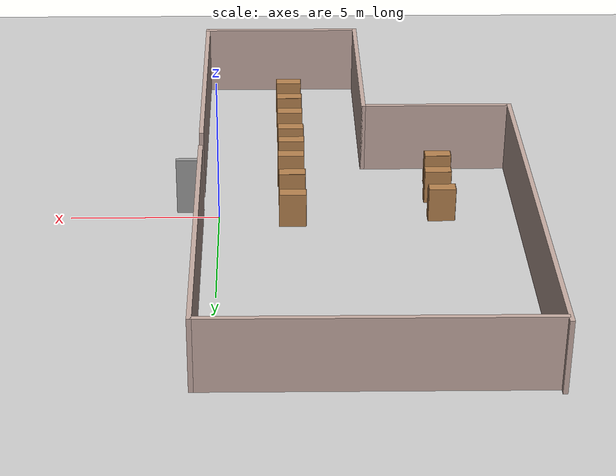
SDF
<sdf version="1.7">
 <world name="default">
  <model name="ground_plane">
   <static>1</static>
   <link name="link">
    <collision name="collision">
     <geometry><plane><normal>0 0 1</normal><size>100 100</size></plane></geometry>
     <surface><friction><ode><mu>100</mu><mu2>50</mu2></ode></friction></surface>
    </collision>
    <visual name="visual">
     <cast_shadows>0</cast_shadows>
     <geometry><plane><normal>0 0 1</normal><size>100 100</size></plane></geometry>
     <material>
      <script><uri>file://media/materials/scripts/gazebo.material</uri><name>Gazebo/Grey</name></script>
     </material>
    </visual>
   </link>
  </model>
  <model name="Library">
   <pose>-4.7482 0.020736 0 0 -0 0</pose>
   <link name="Door_0">
    <collision name="Door_0_Collision">
     <geometry><box><size>0.9 0.17 2</size></box></geometry>
     <pose>0 0 1 0 -0 0</pose>
    </collision>
    <visual name="Door_0_Visual">
     <pose>0 0 1 0 -0 0</pose>
     <geometry><box><size>0.9 0.17 2</size></box></geometry>
     <material>
      <script><uri>file://media/materials/scripts/gazebo.material</uri><name>Gazebo/Grey</name></script>
     </material>
    </visual>
    <pose>5.73366 -0.456007 0 0 -0 0</pose>
   </link>
   <link name="Wall_10">
    <collision name="Wall_10_Collision">
     <geometry><box><size>8.75 0.15 2.5</size></box></geometry>
     <pose>0 0 1.25 0 -0 0</pose>
    </collision>
    <visual name="Wall_10_Visual">
     <pose>0 0 1.25 0 -0 0</pose>
     <geometry><box><size>8.75 0.15 2.5</size></box></geometry>
     <material>
      <script><uri>file://media/materials/scripts/gazebo.material</uri><name>Gazebo/Grey</name></script>
      <ambient>0.760784 0.662745 0.627451 1</ambient>
     </material>
     <meta><layer>0</layer></meta>
    </visual>
    <pose>5.35 -5.8 0 0 -0 1.5708</pose>
   </link>
   <link name="Wall_12">
    <collision name="Wall_12_Collision">
     <geometry><box><size>10.5 0.15 2.5</size></box></geometry>
     <pose>0 0 1.25 0 -0 0</pose>
    </collision>
    <visual name="Wall_12_Visual">
     <pose>0 0 1.25 0 -0 0</pose>
     <geometry><box><size>10.5 0.15 2.5</size></box></geometry>
     <material>
      <script><uri>file://media/materials/scripts/gazebo.material</uri><name>Gazebo/Grey</name></script>
      <ambient>0.760784 0.662745 0.627451 1</ambient>
     </material>
     <meta><layer>0</layer></meta>
    </visual>
    <pose>5.3467 4.71899 0 0 -0 1.5708</pose>
   </link>
   <link name="Wall_13">
    <collision name="Wall_13_Collision">
     <geometry><box><size>10.75 0.15 2.5</size></box></geometry>
     <pose>0 0 1.25 0 -0 0</pose>
    </collision>
    <visual name="Wall_13_Visual">
     <pose>0 0 1.25 0 -0 0</pose>
     <geometry><box><size>10.75 0.15 2.5</size></box></geometry>
     <material>
      <script><uri>file://media/materials/scripts/gazebo.material</uri><name>Gazebo/Grey</name></script>
      <ambient>0.760784 0.662745 0.627451 1</ambient>
     </material>
     <meta><layer>0</layer></meta>
    </visual>
    <pose>0.046696 9.89399 0 0 -0 3.14159</pose>
   </link>
   <link name="Wall_6">
    <collision name="Wall_6_Collision">
     <geometry><box><size>13.75 0.15 2.5</size></box></geometry>
     <pose>0 0 1.25 0 -0 0</pose>
    </collision>
    <visual name="Wall_6_Visual">
     <pose>0 0 1.25 0 -0 0</pose>
     <geometry><box><size>13.75 0.15 2.5</size></box></geometry>
     <material>
      <script><uri>file://media/materials/scripts/gazebo.material</uri><name>Gazebo/Grey</name></script>
      <ambient>0.760784 0.662745 0.627451 1</ambient>
     </material>
     <meta><layer>0</layer></meta>
    </visual>
    <pose>-5.35 3.3 0 0 -0 -1.5708</pose>
   </link>
   <link name="Wall_7">
    <collision name="Wall_7_Collision">
     <geometry><box><size>5.25 0.15 2.5</size></box></geometry>
     <pose>0 0 1.25 0 -0 0</pose>
    </collision>
    <visual name="Wall_7_Visual">
     <pose>0 0 1.25 0 -0 0</pose>
     <geometry><box><size>5.25 0.15 2.5</size></box></geometry>
     <material>
      <script><uri>file://media/materials/scripts/gazebo.material</uri><name>Gazebo/Grey</name></script>
      <ambient>0.760784 0.662745 0.627451 1</ambient>
     </material>
     <meta><layer>0</layer></meta>
    </visual>
    <pose>-2.8 -3.5 0 0 -0 0</pose>
   </link>
   <link name="Wall_8">
    <collision name="Wall_8_Collision">
     <geometry><box><size>6.75 0.15 2.5</size></box></geometry>
     <pose>0 0 1.25 0 -0 0</pose>
    </collision>
    <visual name="Wall_8_Visual">
     <pose>0 0 1.25 0 -0 0</pose>
     <geometry><box><size>6.75 0.15 2.5</size></box></geometry>
     <material>
      <script><uri>file://media/materials/scripts/gazebo.material</uri><name>Gazebo/Grey</name></script>
      <ambient>0.760784 0.662745 0.627451 1</ambient>
     </material>
     <meta><layer>0</layer></meta>
    </visual>
    <pose>-0.25 -6.8 0 0 -0 -1.5708</pose>
   </link>
   <link name="Wall_9">
    <collision name="Wall_9_Collision">
     <geometry><box><size>5.75 0.15 2.5</size></box></geometry>
     <pose>0 0 1.25 0 -0 0</pose>
    </collision>
    <visual name="Wall_9_Visual">
     <pose>0 0 1.25 0 -0 0</pose>
     <geometry><box><size>5.75 0.15 2.5</size></box></geometry>
     <material>
      <script><uri>file://media/materials/scripts/gazebo.material</uri><name>Gazebo/Grey</name></script>
      <ambient>0.760784 0.662745 0.627451 1</ambient>
     </material>
     <meta><layer>0</layer></meta>
    </visual>
    <pose>2.55 -10.1 0 0 -0 0</pose>
   </link>
   <static>1</static>
  </model>
  <model name="bookshelf">
   <static>1</static>
   <link name="link">
    <inertial><mass>1</mass></inertial>
    <collision name="back">
     <pose>0 0.005 0.6 0 -0 0</pose>
     <geometry><box><size>0.9 0.01 1.2</size></box></geometry>
    </collision>
    <visual name="visual1">
     <pose>0 0.005 0.6 0 -0 0</pose>
     <geometry><box><size>0.9 0.01 1.2</size></box></geometry>
     <material>
      <script><uri>file://media/materials/scripts/gazebo.material</uri><name>Gazebo/Wood</name></script>
     </material>
    </visual>
    <collision name="left_side">
     <pose>0.45 -0.195 0.6 0 -0 0</pose>
     <geometry><box><size>0.02 0.4 1.2</size></box></geometry>
    </collision>
    <visual name="visual2">
     <pose>0.45 -0.195 0.6 0 -0 0</pose>
     <geometry><box><size>0.02 0.4 1.2</size></box></geometry>
     <material>
      <script><uri>file://media/materials/scripts/gazebo.material</uri><name>Gazebo/Wood</name></script>
     </material>
    </visual>
    <collision name="right_side">
     <pose>-0.45 -0.195 0.6 0 -0 0</pose>
     <geometry><box><size>0.02 0.4 1.2</size></box></geometry>
    </collision>
    <visual name="visual3">
     <pose>-0.45 -0.195 0.6 0 -0 0</pose>
     <geometry><box><size>0.02 0.4 1.2</size></box></geometry>
     <material>
      <script><uri>file://media/materials/scripts/gazebo.material</uri><name>Gazebo/Wood</name></script>
     </material>
    </visual>
    <collision name="bottom">
     <pose>0 -0.195 0.03 0 -0 0</pose>
     <geometry><box><size>0.88 0.4 0.06</size></box></geometry>
    </collision>
    <visual name="visual4">
     <pose>0 -0.195 0.03 0 -0 0</pose>
     <geometry><box><size>0.88 0.4 0.06</size></box></geometry>
     <material>
      <script><uri>file://media/materials/scripts/gazebo.material</uri><name>Gazebo/Wood</name></script>
     </material>
    </visual>
    <collision name="top">
     <pose>0 -0.195 1.19 0 -0 0</pose>
     <geometry><box><size>0.88 0.4 0.02</size></box></geometry>
    </collision>
    <visual name="visual5">
     <pose>0 -0.195 1.19 0 -0 0</pose>
     <geometry><box><size>0.88 0.4 0.02</size></box></geometry>
     <material>
      <script><uri>file://media/materials/scripts/gazebo.material</uri><name>Gazebo/Wood</name></script>
     </material>
    </visual>
    <collision name="low_shelf">
     <pose>0 -0.195 0.43 0 -0 0</pose>
     <geometry><box><size>0.88 0.4 0.02</size></box></geometry>
    </collision>
    <visual name="visual6">
     <pose>0 -0.195 0.43 0 -0 0</pose>
     <geometry><box><size>0.88 0.4 0.02</size></box></geometry>
     <material>
      <script><uri>file://media/materials/scripts/gazebo.material</uri><name>Gazebo/Wood</name></script>
     </material>
    </visual>
    <collision name="high_shelf">
     <pose>0 -0.195 0.8 0 -0 0</pose>
     <geometry><box><size>0.88 0.4 0.02</size></box></geometry>
    </collision>
    <visual name="visual7">
     <pose>0 -0.195 0.8 0 -0 0</pose>
     <geometry><box><size>0.88 0.4 0.02</size></box></geometry>
     <material>
      <script><uri>file://media/materials/scripts/gazebo.material</uri><name>Gazebo/Wood</name></script>
     </material>
    </visual>
   </link>
   <pose>-7.44995 -0.945511 0 0 -0 0</pose>
  </model>
  <model name="bookshelf_6">
   <static>1</static>
   <link name="link">
    <inertial><mass>1</mass></inertial>
    <collision name="back">
     <pose>0 0.005 0.6 0 -0 0</pose>
     <geometry><box><size>0.9 0.01 1.2</size></box></geometry>
    </collision>
    <visual name="visual1">
     <pose>0 0.005 0.6 0 -0 0</pose>
     <geometry><box><size>0.9 0.01 1.2</size></box></geometry>
     <material>
      <script><uri>file://media/materials/scripts/gazebo.material</uri><name>Gazebo/Wood</name></script>
     </material>
    </visual>
    <collision name="left_side">
     <pose>0.45 -0.195 0.6 0 -0 0</pose>
     <geometry><box><size>0.02 0.4 1.2</size></box></geometry>
    </collision>
    <visual name="visual2">
     <pose>0.45 -0.195 0.6 0 -0 0</pose>
     <geometry><box><size>0.02 0.4 1.2</size></box></geometry>
     <material>
      <script><uri>file://media/materials/scripts/gazebo.material</uri><name>Gazebo/Wood</name></script>
     </material>
    </visual>
    <collision name="right_side">
     <pose>-0.45 -0.195 0.6 0 -0 0</pose>
     <geometry><box><size>0.02 0.4 1.2</size></box></geometry>
    </collision>
    <visual name="visual3">
     <pose>-0.45 -0.195 0.6 0 -0 0</pose>
     <geometry><box><size>0.02 0.4 1.2</size></box></geometry>
     <material>
      <script><uri>file://media/materials/scripts/gazebo.material</uri><name>Gazebo/Wood</name></script>
     </material>
    </visual>
    <collision name="bottom">
     <pose>0 -0.195 0.03 0 -0 0</pose>
     <geometry><box><size>0.88 0.4 0.06</size></box></geometry>
    </collision>
    <visual name="visual4">
     <pose>0 -0.195 0.03 0 -0 0</pose>
     <geometry><box><size>0.88 0.4 0.06</size></box></geometry>
     <material>
      <script><uri>file://media/materials/scripts/gazebo.material</uri><name>Gazebo/Wood</name></script>
     </material>
    </visual>
    <collision name="top">
     <pose>0 -0.195 1.19 0 -0 0</pose>
     <geometry><box><size>0.88 0.4 0.02</size></box></geometry>
    </collision>
    <visual name="visual5">
     <pose>0 -0.195 1.19 0 -0 0</pose>
     <geometry><box><size>0.88 0.4 0.02</size></box></geometry>
     <material>
      <script><uri>file://media/materials/scripts/gazebo.material</uri><name>Gazebo/Wood</name></script>
     </material>
    </visual>
    <collision name="low_shelf">
     <pose>0 -0.195 0.43 0 -0 0</pose>
     <geometry><box><size>0.88 0.4 0.02</size></box></geometry>
    </collision>
    <visual name="visual6">
     <pose>0 -0.195 0.43 0 -0 0</pose>
     <geometry><box><size>0.88 0.4 0.02</size></box></geometry>
     <material>
      <script><uri>file://media/materials/scripts/gazebo.material</uri><name>Gazebo/Wood</name></script>
     </material>
    </visual>
    <collision name="high_shelf">
     <pose>0 -0.195 0.8 0 -0 0</pose>
     <geometry><box><size>0.88 0.4 0.02</size></box></geometry>
    </collision>
    <visual name="visual7">
     <pose>0 -0.195 0.8 0 -0 0</pose>
     <geometry><box><size>0.88 0.4 0.02</size></box></geometry>
     <material>
      <script><uri>file://media/materials/scripts/gazebo.material</uri><name>Gazebo/Wood</name></script>
     </material>
    </visual>
   </link>
   <pose>-7.48414 0.295837 0 0 -0 0</pose>
  </model>
  <model name="bookshelf_7">
   <static>1</static>
   <link name="link">
    <inertial><mass>1</mass></inertial>
    <collision name="back">
     <pose>0 0.005 0.6 0 -0 0</pose>
     <geometry><box><size>0.9 0.01 1.2</size></box></geometry>
    </collision>
    <visual name="visual1">
     <pose>0 0.005 0.6 0 -0 0</pose>
     <geometry><box><size>0.9 0.01 1.2</size></box></geometry>
     <material>
      <script><uri>file://media/materials/scripts/gazebo.material</uri><name>Gazebo/Wood</name></script>
     </material>
    </visual>
    <collision name="left_side">
     <pose>0.45 -0.195 0.6 0 -0 0</pose>
     <geometry><box><size>0.02 0.4 1.2</size></box></geometry>
    </collision>
    <visual name="visual2">
     <pose>0.45 -0.195 0.6 0 -0 0</pose>
     <geometry><box><size>0.02 0.4 1.2</size></box></geometry>
     <material>
      <script><uri>file://media/materials/scripts/gazebo.material</uri><name>Gazebo/Wood</name></script>
     </material>
    </visual>
    <collision name="right_side">
     <pose>-0.45 -0.195 0.6 0 -0 0</pose>
     <geometry><box><size>0.02 0.4 1.2</size></box></geometry>
    </collision>
    <visual name="visual3">
     <pose>-0.45 -0.195 0.6 0 -0 0</pose>
     <geometry><box><size>0.02 0.4 1.2</size></box></geometry>
     <material>
      <script><uri>file://media/materials/scripts/gazebo.material</uri><name>Gazebo/Wood</name></script>
     </material>
    </visual>
    <collision name="bottom">
     <pose>0 -0.195 0.03 0 -0 0</pose>
     <geometry><box><size>0.88 0.4 0.06</size></box></geometry>
    </collision>
    <visual name="visual4">
     <pose>0 -0.195 0.03 0 -0 0</pose>
     <geometry><box><size>0.88 0.4 0.06</size></box></geometry>
     <material>
      <script><uri>file://media/materials/scripts/gazebo.material</uri><name>Gazebo/Wood</name></script>
     </material>
    </visual>
    <collision name="top">
     <pose>0 -0.195 1.19 0 -0 0</pose>
     <geometry><box><size>0.88 0.4 0.02</size></box></geometry>
    </collision>
    <visual name="visual5">
     <pose>0 -0.195 1.19 0 -0 0</pose>
     <geometry><box><size>0.88 0.4 0.02</size></box></geometry>
     <material>
      <script><uri>file://media/materials/scripts/gazebo.material</uri><name>Gazebo/Wood</name></script>
     </material>
    </visual>
    <collision name="low_shelf">
     <pose>0 -0.195 0.43 0 -0 0</pose>
     <geometry><box><size>0.88 0.4 0.02</size></box></geometry>
    </collision>
    <visual name="visual6">
     <pose>0 -0.195 0.43 0 -0 0</pose>
     <geometry><box><size>0.88 0.4 0.02</size></box></geometry>
     <material>
      <script><uri>file://media/materials/scripts/gazebo.material</uri><name>Gazebo/Wood</name></script>
     </material>
    </visual>
    <collision name="high_shelf">
     <pose>0 -0.195 0.8 0 -0 0</pose>
     <geometry><box><size>0.88 0.4 0.02</size></box></geometry>
    </collision>
    <visual name="visual7">
     <pose>0 -0.195 0.8 0 -0 0</pose>
     <geometry><box><size>0.88 0.4 0.02</size></box></geometry>
     <material>
      <script><uri>file://media/materials/scripts/gazebo.material</uri><name>Gazebo/Wood</name></script>
     </material>
    </visual>
   </link>
   <pose>-7.54555 -2.11867 0 0 -0 0</pose>
  </model>
  <model name="bookshelf_8">
   <static>1</static>
   <link name="link">
    <inertial><mass>1</mass></inertial>
    <collision name="back">
     <pose>0 0.005 0.6 0 -0 0</pose>
     <geometry><box><size>0.9 0.01 1.2</size></box></geometry>
    </collision>
    <visual name="visual1">
     <pose>0 0.005 0.6 0 -0 0</pose>
     <geometry><box><size>0.9 0.01 1.2</size></box></geometry>
     <material>
      <script><uri>file://media/materials/scripts/gazebo.material</uri><name>Gazebo/Wood</name></script>
     </material>
    </visual>
    <collision name="left_side">
     <pose>0.45 -0.195 0.6 0 -0 0</pose>
     <geometry><box><size>0.02 0.4 1.2</size></box></geometry>
    </collision>
    <visual name="visual2">
     <pose>0.45 -0.195 0.6 0 -0 0</pose>
     <geometry><box><size>0.02 0.4 1.2</size></box></geometry>
     <material>
      <script><uri>file://media/materials/scripts/gazebo.material</uri><name>Gazebo/Wood</name></script>
     </material>
    </visual>
    <collision name="right_side">
     <pose>-0.45 -0.195 0.6 0 -0 0</pose>
     <geometry><box><size>0.02 0.4 1.2</size></box></geometry>
    </collision>
    <visual name="visual3">
     <pose>-0.45 -0.195 0.6 0 -0 0</pose>
     <geometry><box><size>0.02 0.4 1.2</size></box></geometry>
     <material>
      <script><uri>file://media/materials/scripts/gazebo.material</uri><name>Gazebo/Wood</name></script>
     </material>
    </visual>
    <collision name="bottom">
     <pose>0 -0.195 0.03 0 -0 0</pose>
     <geometry><box><size>0.88 0.4 0.06</size></box></geometry>
    </collision>
    <visual name="visual4">
     <pose>0 -0.195 0.03 0 -0 0</pose>
     <geometry><box><size>0.88 0.4 0.06</size></box></geometry>
     <material>
      <script><uri>file://media/materials/scripts/gazebo.material</uri><name>Gazebo/Wood</name></script>
     </material>
    </visual>
    <collision name="top">
     <pose>0 -0.195 1.19 0 -0 0</pose>
     <geometry><box><size>0.88 0.4 0.02</size></box></geometry>
    </collision>
    <visual name="visual5">
     <pose>0 -0.195 1.19 0 -0 0</pose>
     <geometry><box><size>0.88 0.4 0.02</size></box></geometry>
     <material>
      <script><uri>file://media/materials/scripts/gazebo.material</uri><name>Gazebo/Wood</name></script>
     </material>
    </visual>
    <collision name="low_shelf">
     <pose>0 -0.195 0.43 0 -0 0</pose>
     <geometry><box><size>0.88 0.4 0.02</size></box></geometry>
    </collision>
    <visual name="visual6">
     <pose>0 -0.195 0.43 0 -0 0</pose>
     <geometry><box><size>0.88 0.4 0.02</size></box></geometry>
     <material>
      <script><uri>file://media/materials/scripts/gazebo.material</uri><name>Gazebo/Wood</name></script>
     </material>
    </visual>
    <collision name="high_shelf">
     <pose>0 -0.195 0.8 0 -0 0</pose>
     <geometry><box><size>0.88 0.4 0.02</size></box></geometry>
    </collision>
    <visual name="visual7">
     <pose>0 -0.195 0.8 0 -0 0</pose>
     <geometry><box><size>0.88 0.4 0.02</size></box></geometry>
     <material>
      <script><uri>file://media/materials/scripts/gazebo.material</uri><name>Gazebo/Wood</name></script>
     </material>
    </visual>
   </link>
   <pose>-2.44841 -8.00535 0 0 -0 0</pose>
  </model>
  <model name="bookshelf_9">
   <static>1</static>
   <link name="link">
    <inertial><mass>1</mass></inertial>
    <collision name="back">
     <pose>0 0.005 0.6 0 -0 0</pose>
     <geometry><box><size>0.9 0.01 1.2</size></box></geometry>
    </collision>
    <visual name="visual1">
     <pose>0 0.005 0.6 0 -0 0</pose>
     <geometry><box><size>0.9 0.01 1.2</size></box></geometry>
     <material>
      <script><uri>file://media/materials/scripts/gazebo.material</uri><name>Gazebo/Wood</name></script>
     </material>
    </visual>
    <collision name="left_side">
     <pose>0.45 -0.195 0.6 0 -0 0</pose>
     <geometry><box><size>0.02 0.4 1.2</size></box></geometry>
    </collision>
    <visual name="visual2">
     <pose>0.45 -0.195 0.6 0 -0 0</pose>
     <geometry><box><size>0.02 0.4 1.2</size></box></geometry>
     <material>
      <script><uri>file://media/materials/scripts/gazebo.material</uri><name>Gazebo/Wood</name></script>
     </material>
    </visual>
    <collision name="right_side">
     <pose>-0.45 -0.195 0.6 0 -0 0</pose>
     <geometry><box><size>0.02 0.4 1.2</size></box></geometry>
    </collision>
    <visual name="visual3">
     <pose>-0.45 -0.195 0.6 0 -0 0</pose>
     <geometry><box><size>0.02 0.4 1.2</size></box></geometry>
     <material>
      <script><uri>file://media/materials/scripts/gazebo.material</uri><name>Gazebo/Wood</name></script>
     </material>
    </visual>
    <collision name="bottom">
     <pose>0 -0.195 0.03 0 -0 0</pose>
     <geometry><box><size>0.88 0.4 0.06</size></box></geometry>
    </collision>
    <visual name="visual4">
     <pose>0 -0.195 0.03 0 -0 0</pose>
     <geometry><box><size>0.88 0.4 0.06</size></box></geometry>
     <material>
      <script><uri>file://media/materials/scripts/gazebo.material</uri><name>Gazebo/Wood</name></script>
     </material>
    </visual>
    <collision name="top">
     <pose>0 -0.195 1.19 0 -0 0</pose>
     <geometry><box><size>0.88 0.4 0.02</size></box></geometry>
    </collision>
    <visual name="visual5">
     <pose>0 -0.195 1.19 0 -0 0</pose>
     <geometry><box><size>0.88 0.4 0.02</size></box></geometry>
     <material>
      <script><uri>file://media/materials/scripts/gazebo.material</uri><name>Gazebo/Wood</name></script>
     </material>
    </visual>
    <collision name="low_shelf">
     <pose>0 -0.195 0.43 0 -0 0</pose>
     <geometry><box><size>0.88 0.4 0.02</size></box></geometry>
    </collision>
    <visual name="visual6">
     <pose>0 -0.195 0.43 0 -0 0</pose>
     <geometry><box><size>0.88 0.4 0.02</size></box></geometry>
     <material>
      <script><uri>file://media/materials/scripts/gazebo.material</uri><name>Gazebo/Wood</name></script>
     </material>
    </visual>
    <collision name="high_shelf">
     <pose>0 -0.195 0.8 0 -0 0</pose>
     <geometry><box><size>0.88 0.4 0.02</size></box></geometry>
    </collision>
    <visual name="visual7">
     <pose>0 -0.195 0.8 0 -0 0</pose>
     <geometry><box><size>0.88 0.4 0.02</size></box></geometry>
     <material>
      <script><uri>file://media/materials/scripts/gazebo.material</uri><name>Gazebo/Wood</name></script>
     </material>
    </visual>
   </link>
   <pose>-2.45759 -6.7332 0 0 -0 0</pose>
  </model>
  <model name="bookshelf_10">
   <static>1</static>
   <link name="link">
    <inertial><mass>1</mass></inertial>
    <collision name="back">
     <pose>0 0.005 0.6 0 -0 0</pose>
     <geometry><box><size>0.9 0.01 1.2</size></box></geometry>
    </collision>
    <visual name="visual1">
     <pose>0 0.005 0.6 0 -0 0</pose>
     <geometry><box><size>0.9 0.01 1.2</size></box></geometry>
     <material>
      <script><uri>file://media/materials/scripts/gazebo.material</uri><name>Gazebo/Wood</name></script>
     </material>
    </visual>
    <collision name="left_side">
     <pose>0.45 -0.195 0.6 0 -0 0</pose>
     <geometry><box><size>0.02 0.4 1.2</size></box></geometry>
    </collision>
    <visual name="visual2">
     <pose>0.45 -0.195 0.6 0 -0 0</pose>
     <geometry><box><size>0.02 0.4 1.2</size></box></geometry>
     <material>
      <script><uri>file://media/materials/scripts/gazebo.material</uri><name>Gazebo/Wood</name></script>
     </material>
    </visual>
    <collision name="right_side">
     <pose>-0.45 -0.195 0.6 0 -0 0</pose>
     <geometry><box><size>0.02 0.4 1.2</size></box></geometry>
    </collision>
    <visual name="visual3">
     <pose>-0.45 -0.195 0.6 0 -0 0</pose>
     <geometry><box><size>0.02 0.4 1.2</size></box></geometry>
     <material>
      <script><uri>file://media/materials/scripts/gazebo.material</uri><name>Gazebo/Wood</name></script>
     </material>
    </visual>
    <collision name="bottom">
     <pose>0 -0.195 0.03 0 -0 0</pose>
     <geometry><box><size>0.88 0.4 0.06</size></box></geometry>
    </collision>
    <visual name="visual4">
     <pose>0 -0.195 0.03 0 -0 0</pose>
     <geometry><box><size>0.88 0.4 0.06</size></box></geometry>
     <material>
      <script><uri>file://media/materials/scripts/gazebo.material</uri><name>Gazebo/Wood</name></script>
     </material>
    </visual>
    <collision name="top">
     <pose>0 -0.195 1.19 0 -0 0</pose>
     <geometry><box><size>0.88 0.4 0.02</size></box></geometry>
    </collision>
    <visual name="visual5">
     <pose>0 -0.195 1.19 0 -0 0</pose>
     <geometry><box><size>0.88 0.4 0.02</size></box></geometry>
     <material>
      <script><uri>file://media/materials/scripts/gazebo.material</uri><name>Gazebo/Wood</name></script>
     </material>
    </visual>
    <collision name="low_shelf">
     <pose>0 -0.195 0.43 0 -0 0</pose>
     <geometry><box><size>0.88 0.4 0.02</size></box></geometry>
    </collision>
    <visual name="visual6">
     <pose>0 -0.195 0.43 0 -0 0</pose>
     <geometry><box><size>0.88 0.4 0.02</size></box></geometry>
     <material>
      <script><uri>file://media/materials/scripts/gazebo.material</uri><name>Gazebo/Wood</name></script>
     </material>
    </visual>
    <collision name="high_shelf">
     <pose>0 -0.195 0.8 0 -0 0</pose>
     <geometry><box><size>0.88 0.4 0.02</size></box></geometry>
    </collision>
    <visual name="visual7">
     <pose>0 -0.195 0.8 0 -0 0</pose>
     <geometry><box><size>0.88 0.4 0.02</size></box></geometry>
     <material>
      <script><uri>file://media/materials/scripts/gazebo.material</uri><name>Gazebo/Wood</name></script>
     </material>
    </visual>
   </link>
   <pose>-2.45723 -5.51872 0 0 -0 0</pose>
  </model>
  <model name="bookshelf_11">
   <static>1</static>
   <link name="link">
    <inertial><mass>1</mass></inertial>
    <collision name="back">
     <pose>0 0.005 0.6 0 -0 0</pose>
     <geometry><box><size>0.9 0.01 1.2</size></box></geometry>
    </collision>
    <visual name="visual1">
     <pose>0 0.005 0.6 0 -0 0</pose>
     <geometry><box><size>0.9 0.01 1.2</size></box></geometry>
     <material>
      <script><uri>file://media/materials/scripts/gazebo.material</uri><name>Gazebo/Wood</name></script>
     </material>
    </visual>
    <collision name="left_side">
     <pose>0.45 -0.195 0.6 0 -0 0</pose>
     <geometry><box><size>0.02 0.4 1.2</size></box></geometry>
    </collision>
    <visual name="visual2">
     <pose>0.45 -0.195 0.6 0 -0 0</pose>
     <geometry><box><size>0.02 0.4 1.2</size></box></geometry>
     <material>
      <script><uri>file://media/materials/scripts/gazebo.material</uri><name>Gazebo/Wood</name></script>
     </material>
    </visual>
    <collision name="right_side">
     <pose>-0.45 -0.195 0.6 0 -0 0</pose>
     <geometry><box><size>0.02 0.4 1.2</size></box></geometry>
    </collision>
    <visual name="visual3">
     <pose>-0.45 -0.195 0.6 0 -0 0</pose>
     <geometry><box><size>0.02 0.4 1.2</size></box></geometry>
     <material>
      <script><uri>file://media/materials/scripts/gazebo.material</uri><name>Gazebo/Wood</name></script>
     </material>
    </visual>
    <collision name="bottom">
     <pose>0 -0.195 0.03 0 -0 0</pose>
     <geometry><box><size>0.88 0.4 0.06</size></box></geometry>
    </collision>
    <visual name="visual4">
     <pose>0 -0.195 0.03 0 -0 0</pose>
     <geometry><box><size>0.88 0.4 0.06</size></box></geometry>
     <material>
      <script><uri>file://media/materials/scripts/gazebo.material</uri><name>Gazebo/Wood</name></script>
     </material>
    </visual>
    <collision name="top">
     <pose>0 -0.195 1.19 0 -0 0</pose>
     <geometry><box><size>0.88 0.4 0.02</size></box></geometry>
    </collision>
    <visual name="visual5">
     <pose>0 -0.195 1.19 0 -0 0</pose>
     <geometry><box><size>0.88 0.4 0.02</size></box></geometry>
     <material>
      <script><uri>file://media/materials/scripts/gazebo.material</uri><name>Gazebo/Wood</name></script>
     </material>
    </visual>
    <collision name="low_shelf">
     <pose>0 -0.195 0.43 0 -0 0</pose>
     <geometry><box><size>0.88 0.4 0.02</size></box></geometry>
    </collision>
    <visual name="visual6">
     <pose>0 -0.195 0.43 0 -0 0</pose>
     <geometry><box><size>0.88 0.4 0.02</size></box></geometry>
     <material>
      <script><uri>file://media/materials/scripts/gazebo.material</uri><name>Gazebo/Wood</name></script>
     </material>
    </visual>
    <collision name="high_shelf">
     <pose>0 -0.195 0.8 0 -0 0</pose>
     <geometry><box><size>0.88 0.4 0.02</size></box></geometry>
    </collision>
    <visual name="visual7">
     <pose>0 -0.195 0.8 0 -0 0</pose>
     <geometry><box><size>0.88 0.4 0.02</size></box></geometry>
     <material>
      <script><uri>file://media/materials/scripts/gazebo.material</uri><name>Gazebo/Wood</name></script>
     </material>
    </visual>
   </link>
   <pose>-2.47368 -4.25557 0 0 -0 0</pose>
  </model>
  <model name="bookshelf_12">
   <static>1</static>
   <link name="link">
    <inertial><mass>1</mass></inertial>
    <collision name="back">
     <pose>0 0.005 0.6 0 -0 0</pose>
     <geometry><box><size>0.9 0.01 1.2</size></box></geometry>
    </collision>
    <visual name="visual1">
     <pose>0 0.005 0.6 0 -0 0</pose>
     <geometry><box><size>0.9 0.01 1.2</size></box></geometry>
     <material>
      <script><uri>file://media/materials/scripts/gazebo.material</uri><name>Gazebo/Wood</name></script>
     </material>
    </visual>
    <collision name="left_side">
     <pose>0.45 -0.195 0.6 0 -0 0</pose>
     <geometry><box><size>0.02 0.4 1.2</size></box></geometry>
    </collision>
    <visual name="visual2">
     <pose>0.45 -0.195 0.6 0 -0 0</pose>
     <geometry><box><size>0.02 0.4 1.2</size></box></geometry>
     <material>
      <script><uri>file://media/materials/scripts/gazebo.material</uri><name>Gazebo/Wood</name></script>
     </material>
    </visual>
    <collision name="right_side">
     <pose>-0.45 -0.195 0.6 0 -0 0</pose>
     <geometry><box><size>0.02 0.4 1.2</size></box></geometry>
    </collision>
    <visual name="visual3">
     <pose>-0.45 -0.195 0.6 0 -0 0</pose>
     <geometry><box><size>0.02 0.4 1.2</size></box></geometry>
     <material>
      <script><uri>file://media/materials/scripts/gazebo.material</uri><name>Gazebo/Wood</name></script>
     </material>
    </visual>
    <collision name="bottom">
     <pose>0 -0.195 0.03 0 -0 0</pose>
     <geometry><box><size>0.88 0.4 0.06</size></box></geometry>
    </collision>
    <visual name="visual4">
     <pose>0 -0.195 0.03 0 -0 0</pose>
     <geometry><box><size>0.88 0.4 0.06</size></box></geometry>
     <material>
      <script><uri>file://media/materials/scripts/gazebo.material</uri><name>Gazebo/Wood</name></script>
     </material>
    </visual>
    <collision name="top">
     <pose>0 -0.195 1.19 0 -0 0</pose>
     <geometry><box><size>0.88 0.4 0.02</size></box></geometry>
    </collision>
    <visual name="visual5">
     <pose>0 -0.195 1.19 0 -0 0</pose>
     <geometry><box><size>0.88 0.4 0.02</size></box></geometry>
     <material>
      <script><uri>file://media/materials/scripts/gazebo.material</uri><name>Gazebo/Wood</name></script>
     </material>
    </visual>
    <collision name="low_shelf">
     <pose>0 -0.195 0.43 0 -0 0</pose>
     <geometry><box><size>0.88 0.4 0.02</size></box></geometry>
    </collision>
    <visual name="visual6">
     <pose>0 -0.195 0.43 0 -0 0</pose>
     <geometry><box><size>0.88 0.4 0.02</size></box></geometry>
     <material>
      <script><uri>file://media/materials/scripts/gazebo.material</uri><name>Gazebo/Wood</name></script>
     </material>
    </visual>
    <collision name="high_shelf">
     <pose>0 -0.195 0.8 0 -0 0</pose>
     <geometry><box><size>0.88 0.4 0.02</size></box></geometry>
    </collision>
    <visual name="visual7">
     <pose>0 -0.195 0.8 0 -0 0</pose>
     <geometry><box><size>0.88 0.4 0.02</size></box></geometry>
     <material>
      <script><uri>file://media/materials/scripts/gazebo.material</uri><name>Gazebo/Wood</name></script>
     </material>
    </visual>
   </link>
   <pose>-2.4786 -3.24956 0 0 -0 0</pose>
  </model>
  <model name="bookshelf_13">
   <static>1</static>
   <link name="link">
    <inertial><mass>1</mass></inertial>
    <collision name="back">
     <pose>0 0.005 0.6 0 -0 0</pose>
     <geometry><box><size>0.9 0.01 1.2</size></box></geometry>
    </collision>
    <visual name="visual1">
     <pose>0 0.005 0.6 0 -0 0</pose>
     <geometry><box><size>0.9 0.01 1.2</size></box></geometry>
     <material>
      <script><uri>file://media/materials/scripts/gazebo.material</uri><name>Gazebo/Wood</name></script>
     </material>
    </visual>
    <collision name="left_side">
     <pose>0.45 -0.195 0.6 0 -0 0</pose>
     <geometry><box><size>0.02 0.4 1.2</size></box></geometry>
    </collision>
    <visual name="visual2">
     <pose>0.45 -0.195 0.6 0 -0 0</pose>
     <geometry><box><size>0.02 0.4 1.2</size></box></geometry>
     <material>
      <script><uri>file://media/materials/scripts/gazebo.material</uri><name>Gazebo/Wood</name></script>
     </material>
    </visual>
    <collision name="right_side">
     <pose>-0.45 -0.195 0.6 0 -0 0</pose>
     <geometry><box><size>0.02 0.4 1.2</size></box></geometry>
    </collision>
    <visual name="visual3">
     <pose>-0.45 -0.195 0.6 0 -0 0</pose>
     <geometry><box><size>0.02 0.4 1.2</size></box></geometry>
     <material>
      <script><uri>file://media/materials/scripts/gazebo.material</uri><name>Gazebo/Wood</name></script>
     </material>
    </visual>
    <collision name="bottom">
     <pose>0 -0.195 0.03 0 -0 0</pose>
     <geometry><box><size>0.88 0.4 0.06</size></box></geometry>
    </collision>
    <visual name="visual4">
     <pose>0 -0.195 0.03 0 -0 0</pose>
     <geometry><box><size>0.88 0.4 0.06</size></box></geometry>
     <material>
      <script><uri>file://media/materials/scripts/gazebo.material</uri><name>Gazebo/Wood</name></script>
     </material>
    </visual>
    <collision name="top">
     <pose>0 -0.195 1.19 0 -0 0</pose>
     <geometry><box><size>0.88 0.4 0.02</size></box></geometry>
    </collision>
    <visual name="visual5">
     <pose>0 -0.195 1.19 0 -0 0</pose>
     <geometry><box><size>0.88 0.4 0.02</size></box></geometry>
     <material>
      <script><uri>file://media/materials/scripts/gazebo.material</uri><name>Gazebo/Wood</name></script>
     </material>
    </visual>
    <collision name="low_shelf">
     <pose>0 -0.195 0.43 0 -0 0</pose>
     <geometry><box><size>0.88 0.4 0.02</size></box></geometry>
    </collision>
    <visual name="visual6">
     <pose>0 -0.195 0.43 0 -0 0</pose>
     <geometry><box><size>0.88 0.4 0.02</size></box></geometry>
     <material>
      <script><uri>file://media/materials/scripts/gazebo.material</uri><name>Gazebo/Wood</name></script>
     </material>
    </visual>
    <collision name="high_shelf">
     <pose>0 -0.195 0.8 0 -0 0</pose>
     <geometry><box><size>0.88 0.4 0.02</size></box></geometry>
    </collision>
    <visual name="visual7">
     <pose>0 -0.195 0.8 0 -0 0</pose>
     <geometry><box><size>0.88 0.4 0.02</size></box></geometry>
     <material>
      <script><uri>file://media/materials/scripts/gazebo.material</uri><name>Gazebo/Wood</name></script>
     </material>
    </visual>
   </link>
   <pose>-2.45453 -2.15298 0 0 -0 0</pose>
  </model>
  <model name="bookshelf_14">
   <static>1</static>
   <link name="link">
    <inertial><mass>1</mass></inertial>
    <collision name="back">
     <pose>0 0.005 0.6 0 -0 0</pose>
     <geometry><box><size>0.9 0.01 1.2</size></box></geometry>
    </collision>
    <visual name="visual1">
     <pose>0 0.005 0.6 0 -0 0</pose>
     <geometry><box><size>0.9 0.01 1.2</size></box></geometry>
     <material>
      <script><uri>file://media/materials/scripts/gazebo.material</uri><name>Gazebo/Wood</name></script>
     </material>
    </visual>
    <collision name="left_side">
     <pose>0.45 -0.195 0.6 0 -0 0</pose>
     <geometry><box><size>0.02 0.4 1.2</size></box></geometry>
    </collision>
    <visual name="visual2">
     <pose>0.45 -0.195 0.6 0 -0 0</pose>
     <geometry><box><size>0.02 0.4 1.2</size></box></geometry>
     <material>
      <script><uri>file://media/materials/scripts/gazebo.material</uri><name>Gazebo/Wood</name></script>
     </material>
    </visual>
    <collision name="right_side">
     <pose>-0.45 -0.195 0.6 0 -0 0</pose>
     <geometry><box><size>0.02 0.4 1.2</size></box></geometry>
    </collision>
    <visual name="visual3">
     <pose>-0.45 -0.195 0.6 0 -0 0</pose>
     <geometry><box><size>0.02 0.4 1.2</size></box></geometry>
     <material>
      <script><uri>file://media/materials/scripts/gazebo.material</uri><name>Gazebo/Wood</name></script>
     </material>
    </visual>
    <collision name="bottom">
     <pose>0 -0.195 0.03 0 -0 0</pose>
     <geometry><box><size>0.88 0.4 0.06</size></box></geometry>
    </collision>
    <visual name="visual4">
     <pose>0 -0.195 0.03 0 -0 0</pose>
     <geometry><box><size>0.88 0.4 0.06</size></box></geometry>
     <material>
      <script><uri>file://media/materials/scripts/gazebo.material</uri><name>Gazebo/Wood</name></script>
     </material>
    </visual>
    <collision name="top">
     <pose>0 -0.195 1.19 0 -0 0</pose>
     <geometry><box><size>0.88 0.4 0.02</size></box></geometry>
    </collision>
    <visual name="visual5">
     <pose>0 -0.195 1.19 0 -0 0</pose>
     <geometry><box><size>0.88 0.4 0.02</size></box></geometry>
     <material>
      <script><uri>file://media/materials/scripts/gazebo.material</uri><name>Gazebo/Wood</name></script>
     </material>
    </visual>
    <collision name="low_shelf">
     <pose>0 -0.195 0.43 0 -0 0</pose>
     <geometry><box><size>0.88 0.4 0.02</size></box></geometry>
    </collision>
    <visual name="visual6">
     <pose>0 -0.195 0.43 0 -0 0</pose>
     <geometry><box><size>0.88 0.4 0.02</size></box></geometry>
     <material>
      <script><uri>file://media/materials/scripts/gazebo.material</uri><name>Gazebo/Wood</name></script>
     </material>
    </visual>
    <collision name="high_shelf">
     <pose>0 -0.195 0.8 0 -0 0</pose>
     <geometry><box><size>0.88 0.4 0.02</size></box></geometry>
    </collision>
    <visual name="visual7">
     <pose>0 -0.195 0.8 0 -0 0</pose>
     <geometry><box><size>0.88 0.4 0.02</size></box></geometry>
     <material>
      <script><uri>file://media/materials/scripts/gazebo.material</uri><name>Gazebo/Wood</name></script>
     </material>
    </visual>
   </link>
   <pose>-2.47079 -0.828462 0 0 -0 0</pose>
  </model>
  <model name="bookshelf_15">
   <static>1</static>
   <link name="link">
    <inertial><mass>1</mass></inertial>
    <collision name="back">
     <pose>0 0.005 0.6 0 -0 0</pose>
     <geometry><box><size>0.9 0.01 1.2</size></box></geometry>
    </collision>
    <visual name="visual1">
     <pose>0 0.005 0.6 0 -0 0</pose>
     <geometry><box><size>0.9 0.01 1.2</size></box></geometry>
     <material>
      <script><uri>file://media/materials/scripts/gazebo.material</uri><name>Gazebo/Wood</name></script>
     </material>
    </visual>
    <collision name="left_side">
     <pose>0.45 -0.195 0.6 0 -0 0</pose>
     <geometry><box><size>0.02 0.4 1.2</size></box></geometry>
    </collision>
    <visual name="visual2">
     <pose>0.45 -0.195 0.6 0 -0 0</pose>
     <geometry><box><size>0.02 0.4 1.2</size></box></geometry>
     <material>
      <script><uri>file://media/materials/scripts/gazebo.material</uri><name>Gazebo/Wood</name></script>
     </material>
    </visual>
    <collision name="right_side">
     <pose>-0.45 -0.195 0.6 0 -0 0</pose>
     <geometry><box><size>0.02 0.4 1.2</size></box></geometry>
    </collision>
    <visual name="visual3">
     <pose>-0.45 -0.195 0.6 0 -0 0</pose>
     <geometry><box><size>0.02 0.4 1.2</size></box></geometry>
     <material>
      <script><uri>file://media/materials/scripts/gazebo.material</uri><name>Gazebo/Wood</name></script>
     </material>
    </visual>
    <collision name="bottom">
     <pose>0 -0.195 0.03 0 -0 0</pose>
     <geometry><box><size>0.88 0.4 0.06</size></box></geometry>
    </collision>
    <visual name="visual4">
     <pose>0 -0.195 0.03 0 -0 0</pose>
     <geometry><box><size>0.88 0.4 0.06</size></box></geometry>
     <material>
      <script><uri>file://media/materials/scripts/gazebo.material</uri><name>Gazebo/Wood</name></script>
     </material>
    </visual>
    <collision name="top">
     <pose>0 -0.195 1.19 0 -0 0</pose>
     <geometry><box><size>0.88 0.4 0.02</size></box></geometry>
    </collision>
    <visual name="visual5">
     <pose>0 -0.195 1.19 0 -0 0</pose>
     <geometry><box><size>0.88 0.4 0.02</size></box></geometry>
     <material>
      <script><uri>file://media/materials/scripts/gazebo.material</uri><name>Gazebo/Wood</name></script>
     </material>
    </visual>
    <collision name="low_shelf">
     <pose>0 -0.195 0.43 0 -0 0</pose>
     <geometry><box><size>0.88 0.4 0.02</size></box></geometry>
    </collision>
    <visual name="visual6">
     <pose>0 -0.195 0.43 0 -0 0</pose>
     <geometry><box><size>0.88 0.4 0.02</size></box></geometry>
     <material>
      <script><uri>file://media/materials/scripts/gazebo.material</uri><name>Gazebo/Wood</name></script>
     </material>
    </visual>
    <collision name="high_shelf">
     <pose>0 -0.195 0.8 0 -0 0</pose>
     <geometry><box><size>0.88 0.4 0.02</size></box></geometry>
    </collision>
    <visual name="visual7">
     <pose>0 -0.195 0.8 0 -0 0</pose>
     <geometry><box><size>0.88 0.4 0.02</size></box></geometry>
     <material>
      <script><uri>file://media/materials/scripts/gazebo.material</uri><name>Gazebo/Wood</name></script>
     </material>
    </visual>
   </link>
   <pose>-2.47261 0.612368 0 0 -0 0</pose>
  </model>
 </world>
</sdf>
